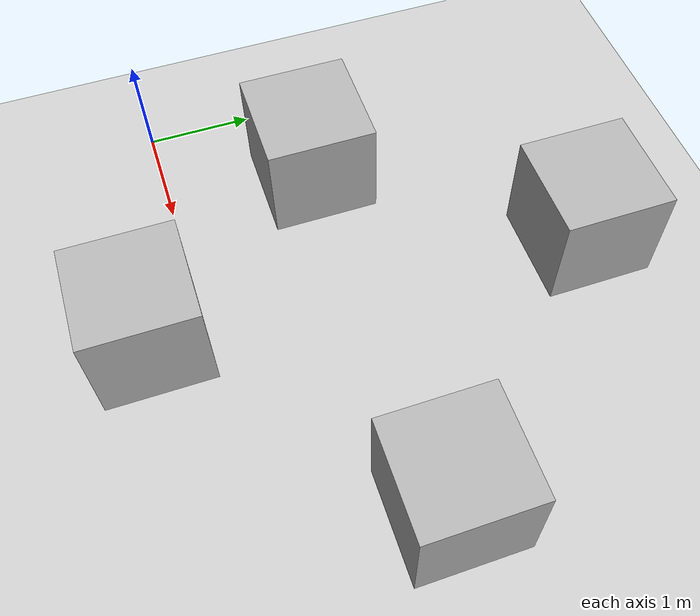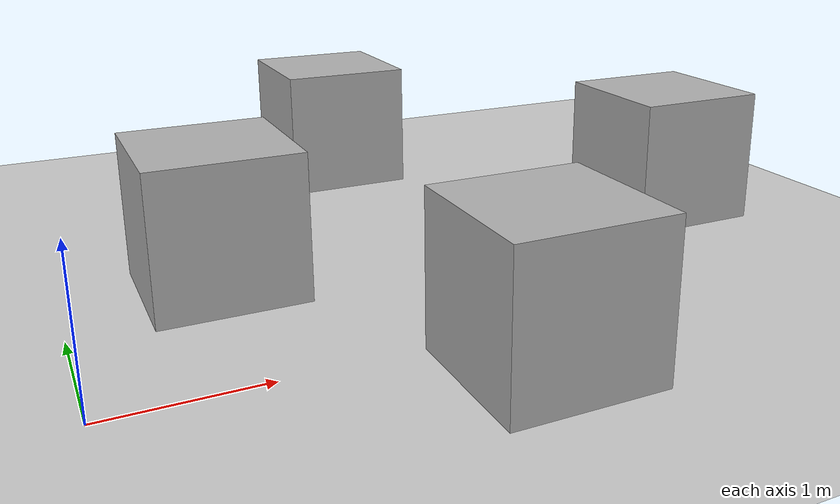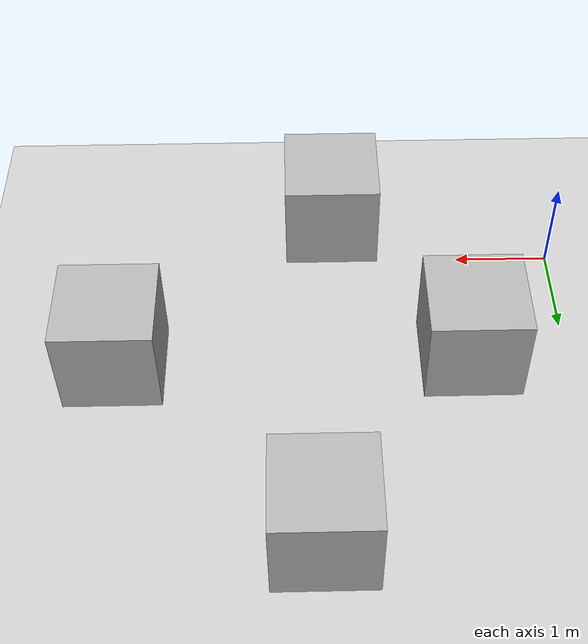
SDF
<sdf version='1.10'>
  <world name='empty'>
    <physics name='1ms' type='ignored'>
      <max_step_size>0.001</max_step_size>
      <real_time_factor>1</real_time_factor>
      <real_time_update_rate>1000</real_time_update_rate>
    </physics>
    <plugin name='gz::sim::systems::Physics' filename='gz-sim-physics-system'/>
    <plugin name='gz::sim::systems::UserCommands' filename='gz-sim-user-commands-system'/>
    <plugin name='gz::sim::systems::SceneBroadcaster' filename='gz-sim-scene-broadcaster-system'/>
    <plugin name='gz::sim::systems::Contact' filename='gz-sim-contact-system'/>
    <plugin name='gz::sim::systems::Sensors' filename='gz-sim-sensors-system'>
      <render_engine>ogre2</render_engine>
    </plugin>
    <plugin name='gz::sim::systems::Imu' filename='gz-sim-imu-system'/>
    <plugin name='gz::sim::systems::NavSat' filename='gz-sim-navsat-system'/>
    <spherical_coordinates>
      <surface_model>EARTH_WGS84</surface_model>
      <world_frame_orientation>ENU</world_frame_orientation>
      <latitude_deg>47.478949999999998</latitude_deg>
      <longitude_deg>19.057784999999999</longitude_deg>
      <elevation>0</elevation>
      <heading_deg>0</heading_deg>
    </spherical_coordinates>
    <gravity>0 0 -9.8000000000000007</gravity>
    <magnetic_field>5.5644999999999998e-06 2.2875799999999999e-05 -4.2388400000000002e-05</magnetic_field>
    <atmosphere type='adiabatic'/>
    <scene>
      <ambient>0.400000006 0.400000006 0.400000006 1</ambient>
      <background>0.699999988 0.699999988 0.699999988 1</background>
      <shadows>true</shadows>
    </scene>
    <model name='ground_plane'>
      <static>true</static>
      <link name='link'>
        <collision name='collision'>
          <geometry>
            <plane>
              <normal>0 0 1</normal>
              <size>100 100</size>
            </plane>
          </geometry>
          <surface>
            <friction>
              <ode>
                <mu>50</mu>
              </ode>
            </friction>
            <bounce/>
            <contact/>
          </surface>
        </collision>
        <visual name='visual'>
          <geometry>
            <plane>
              <normal>0 0 1</normal>
              <size>100 100</size>
            </plane>
          </geometry>
          <material>
            <ambient>0.800000012 0.800000012 0.800000012 1</ambient>
            <diffuse>0.800000012 0.800000012 0.800000012 1</diffuse>
            <specular>0.800000012 0.800000012 0.800000012 1</specular>
          </material>
        </visual>
        <pose>0 0 0 0 0 0</pose>
        <inertial>
          <pose>0 0 0 0 0 0</pose>
          <mass>1</mass>
          <inertia>
            <ixx>1</ixx>
            <ixy>0</ixy>
            <ixz>0</ixz>
            <iyy>1</iyy>
            <iyz>0</iyz>
            <izz>1</izz>
          </inertia>
        </inertial>
        <enable_wind>false</enable_wind>
      </link>
      <pose>0 0 0 0 0 0</pose>
      <self_collide>false</self_collide>
    </model>
    <model name='box'>
      <pose>2.5571103147034915 3.5643837443258519 0.49999999990199806 6.2287739151293738e-22 9.3279666454713669e-22 -3.6315533669320137e-22</pose>
      <link name='box_link'>
        <inertial>
          <inertia>
            <ixx>0.16666</ixx>
            <ixy>0</ixy>
            <ixz>0</ixz>
            <iyy>0.16666</iyy>
            <iyz>0</iyz>
            <izz>0.16666</izz>
          </inertia>
          <mass>1</mass>
          <pose>0 0 0 0 0 0</pose>
        </inertial>
        <collision name='box_collision'>
          <geometry>
            <box>
              <size>1 1 1</size>
            </box>
          </geometry>
          <surface>
            <friction>
              <ode/>
            </friction>
            <bounce/>
            <contact/>
          </surface>
        </collision>
        <visual name='box_visual'>
          <geometry>
            <box>
              <size>1 1 1</size>
            </box>
          </geometry>
          <material>
            <ambient>0.300000012 0.300000012 0.300000012 1</ambient>
            <diffuse>0.699999988 0.699999988 0.699999988 1</diffuse>
            <specular>1 1 1 1</specular>
          </material>
        </visual>
        <pose>0 0 0 0 0 0</pose>
        <enable_wind>false</enable_wind>
      </link>
      <static>false</static>
      <self_collide>false</self_collide>
    </model>
    <model name='box_0'>
      <pose>4.6329949743871746 1.4592720294209878 0.49999999990199806 6.2287739151293738e-22 9.3279666454713669e-22 -3.6315533669320137e-22</pose>
      <link name='box_link'>
        <inertial>
          <inertia>
            <ixx>0.16666</ixx>
            <ixy>0</ixy>
            <ixz>0</ixz>
            <iyy>0.16666</iyy>
            <iyz>0</iyz>
            <izz>0.16666</izz>
          </inertia>
          <mass>1</mass>
          <pose>0 0 0 0 0 0</pose>
        </inertial>
        <collision name='box_collision'>
          <geometry>
            <box>
              <size>1 1 1</size>
            </box>
          </geometry>
          <surface>
            <friction>
              <ode/>
            </friction>
            <bounce/>
            <contact/>
          </surface>
        </collision>
        <visual name='box_visual'>
          <geometry>
            <box>
              <size>1 1 1</size>
            </box>
          </geometry>
          <material>
            <ambient>0.300000012 0.300000012 0.300000012 1</ambient>
            <diffuse>0.699999988 0.699999988 0.699999988 1</diffuse>
            <specular>1 1 1 1</specular>
          </material>
        </visual>
        <pose>0 0 0 0 0 0</pose>
        <enable_wind>false</enable_wind>
      </link>
      <static>false</static>
      <self_collide>false</self_collide>
    </model>
    <model name='box_1'>
      <pose>1.0055349867947008 1.4093994713815947 0.49999999990199806 6.2287739151293738e-22 9.3279666454713669e-22 -3.6315533669320137e-22</pose>
      <link name='box_link'>
        <inertial>
          <inertia>
            <ixx>0.16666</ixx>
            <ixy>0</ixy>
            <ixz>0</ixz>
            <iyy>0.16666</iyy>
            <iyz>0</iyz>
            <izz>0.16666</izz>
          </inertia>
          <mass>1</mass>
          <pose>0 0 0 0 0 0</pose>
        </inertial>
        <collision name='box_collision'>
          <geometry>
            <box>
              <size>1 1 1</size>
            </box>
          </geometry>
          <surface>
            <friction>
              <ode/>
            </friction>
            <bounce/>
            <contact/>
          </surface>
        </collision>
        <visual name='box_visual'>
          <geometry>
            <box>
              <size>1 1 1</size>
            </box>
          </geometry>
          <material>
            <ambient>0.300000012 0.300000012 0.300000012 1</ambient>
            <diffuse>0.699999988 0.699999988 0.699999988 1</diffuse>
            <specular>1 1 1 1</specular>
          </material>
        </visual>
        <pose>0 0 0 0 0 0</pose>
        <enable_wind>false</enable_wind>
      </link>
      <static>false</static>
      <self_collide>false</self_collide>
    </model>
    <model name='box_2'>
      <pose>2.378438961899568 -0.5004372636405634 0.49999999990199806 6.2287739151293738e-22 9.3279666454713669e-22 -3.6315533669320137e-22</pose>
      <link name='box_link'>
        <inertial>
          <inertia>
            <ixx>0.16666</ixx>
            <ixy>0</ixy>
            <ixz>0</ixz>
            <iyy>0.16666</iyy>
            <iyz>0</iyz>
            <izz>0.16666</izz>
          </inertia>
          <mass>1</mass>
          <pose>0 0 0 0 0 0</pose>
        </inertial>
        <collision name='box_collision'>
          <geometry>
            <box>
              <size>1 1 1</size>
            </box>
          </geometry>
          <surface>
            <friction>
              <ode/>
            </friction>
            <bounce/>
            <contact/>
          </surface>
        </collision>
        <visual name='box_visual'>
          <geometry>
            <box>
              <size>1 1 1</size>
            </box>
          </geometry>
          <material>
            <ambient>0.300000012 0.300000012 0.300000012 1</ambient>
            <diffuse>0.699999988 0.699999988 0.699999988 1</diffuse>
            <specular>1 1 1 1</specular>
          </material>
        </visual>
        <pose>0 0 0 0 0 0</pose>
        <enable_wind>false</enable_wind>
      </link>
      <static>false</static>
      <self_collide>false</self_collide>
    </model>
    <light name='sun' type='directional'>
      <pose>0 0 10 0 0 0</pose>
      <cast_shadows>true</cast_shadows>
      <intensity>1</intensity>
      <direction>-0.5 0.10000000000000001 -0.90000000000000002</direction>
      <diffuse>0.800000012 0.800000012 0.800000012 1</diffuse>
      <specular>0.200000003 0.200000003 0.200000003 1</specular>
      <attenuation>
        <range>1000</range>
        <linear>0.01</linear>
        <constant>0.90000000000000002</constant>
        <quadratic>0.001</quadratic>
      </attenuation>
      <spot>
        <inner_angle>0</inner_angle>
        <outer_angle>0</outer_angle>
        <falloff>0</falloff>
      </spot>
    </light>
  </world>
</sdf>
